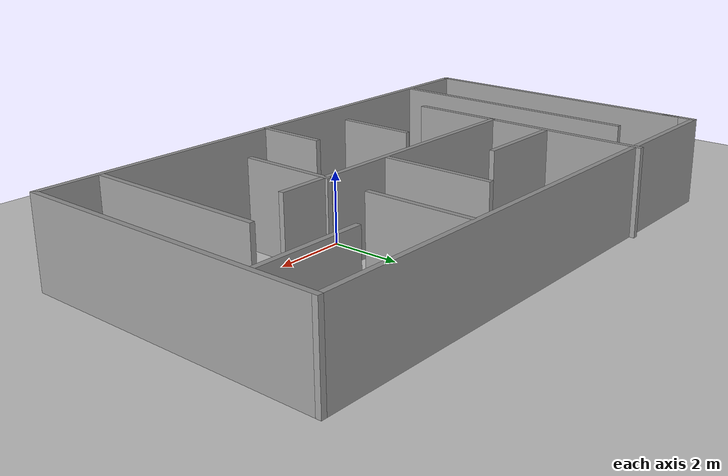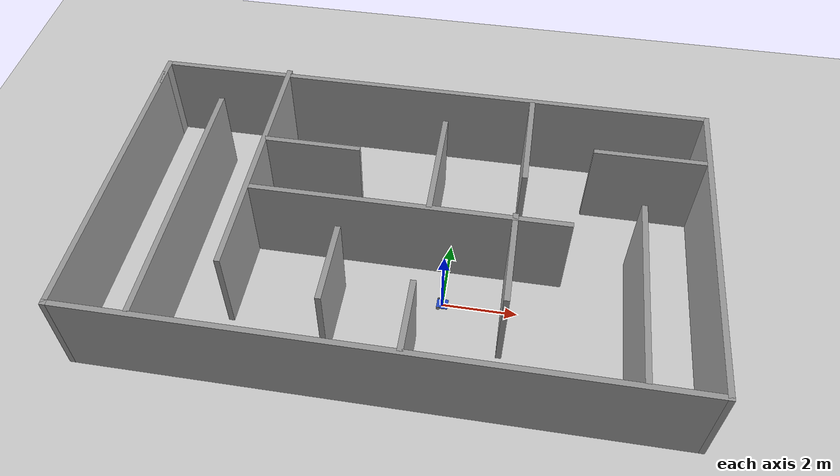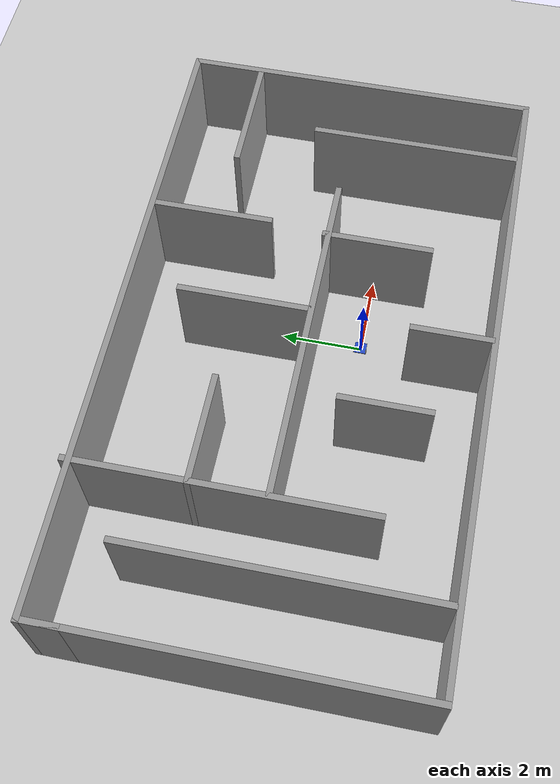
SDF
<sdf version="1.7">
 <world name="default">
  <light name="sun" type="directional">
   <pose>0 0 10 0 -0 0</pose>
   <diffuse>0.8 0.8 0.8 1</diffuse>
   <specular>0.2 0.2 0.2 1</specular>
   <attenuation>
    <range>1000</range>
    <constant>0.9</constant>
    <linear>0.01</linear>
    <quadratic>0.001</quadratic>
   </attenuation>
   <direction>-0.5 0.1 -0.9</direction>
   <spot><inner_angle>0</inner_angle><outer_angle>0</outer_angle><falloff>0</falloff></spot>
  </light>
  <model name="ground_plane">
   <static>1</static>
   <link name="link">
    <collision name="collision">
     <geometry><plane><normal>0 0 1</normal><size>100 100</size></plane></geometry>
     <surface>
      <contact><collide_bitmask>65535</collide_bitmask></contact>
      <friction><ode><mu>100</mu><mu2>50</mu2></ode></friction>
     </surface>
    </collision>
    <visual name="visual">
     <cast_shadows>0</cast_shadows>
     <geometry><plane><normal>0 0 1</normal><size>100 100</size></plane></geometry>
     <material>
      <script><uri>file://media/materials/scripts/gazebo.material</uri><name>Gazebo/Grey</name></script>
     </material>
    </visual>
   </link>
  </model>
  <gravity>0 0 -9.8</gravity>
  <magnetic_field>6e-06 2.3e-05 -4.2e-05</magnetic_field>
  <atmosphere type="adiabatic"/>
  <physics type="ode">
   <max_step_size>0.001</max_step_size>
   <real_time_factor>1</real_time_factor>
   <real_time_update_rate>1000</real_time_update_rate>
  </physics>
  <scene><ambient>0.4 0.4 0.4 1</ambient><background>0.7 0.7 0.7 1</background><shadows>1</shadows></scene>
  <spherical_coordinates>
   <surface_model>EARTH_WGS84</surface_model>
   <latitude_deg>0</latitude_deg>
   <longitude_deg>0</longitude_deg>
   <elevation>0</elevation>
   <heading_deg>0</heading_deg>
  </spherical_coordinates>
  <model name="mrobot">
   <link name="base_footprint">
    <inertial>
     <pose>0.045455 0 0.068182 0 -0 0</pose>
     <mass>0.22</mass>
     <inertia>
      <ixx>0.0201579</ixx>
      <ixy>0</ixy>
      <ixz>-1.81818e-05</ixz>
      <iyy>0.0207034</iyy>
      <iyz>0</iyz>
      <izz>0.0208455</izz>
     </inertia>
    </inertial>
    <collision name="base_footprint_fixed_joint_lump__base_link_collision">
     <pose>0 0 0.05 0 -0 0</pose>
     <geometry><box><size>0.3 0.3 0.02</size></box></geometry>
    </collision>
    <collision name="base_footprint_fixed_joint_lump__camera_link_collision_1">
     <pose>0.1 0 0.07 0 -0 0</pose>
     <geometry><box><size>0.01 0.04 0.04</size></box></geometry>
    </collision>
    <collision name="base_footprint_fixed_joint_lump__laser_link_collision_2">
     <pose>0 0 0.07 0 -0 0</pose>
     <geometry><cylinder><length>0.06</length><radius>0.05</radius></cylinder></geometry>
    </collision>
    <visual name="base_footprint_visual"><geometry><box><size>0.001 0.001 0.001</size></box></geometry></visual>
    <visual name="base_footprint_fixed_joint_lump__base_link_visual_1">
     <pose>0 0 0.05 0 -0 0</pose>
     <geometry><box><size>0.3 0.3 0.02</size></box></geometry>
     <material>
      <script><name>Gazebo/Blue</name><uri>file://media/materials/scripts/gazebo.material</uri></script>
     </material>
    </visual>
    <visual name="base_footprint_fixed_joint_lump__camera_link_visual_2">
     <pose>0.1 0 0.07 0 -0 0</pose>
     <geometry><box><size>0.01 0.04 0.04</size></box></geometry>
     <material>
      <script><name>Gazebo/Black</name><uri>file://media/materials/scripts/gazebo.material</uri></script>
     </material>
    </visual>
    <visual name="base_footprint_fixed_joint_lump__laser_link_visual_3">
     <pose>0 0 0.07 0 -0 0</pose>
     <geometry><cylinder><length>0.05</length><radius>0.05</radius></cylinder></geometry>
     <material>
      <script><name>Gazebo/Black</name><uri>file://media/materials/scripts/gazebo.material</uri></script>
     </material>
    </visual>
    <sensor name="camera_node" type="camera">
     <update_rate>30</update_rate>
     <camera name="head">
      <horizontal_fov>1.39626</horizontal_fov>
      <image><width>1280</width><height>720</height><format>R8G8B8</format></image>
      <clip><near>0.02</near><far>300</far></clip>
      <noise><type>gaussian</type><mean>0</mean><stddev>0.007</stddev></noise>
     </camera>
     <plugin name="gazebo_camera" filename="libgazebo_ros_camera.so">
      <alwaysOn>1</alwaysOn>
      <updateRate>0.0</updateRate>
      <cameraName>/camera</cameraName>
      <imageTopicName>image_raw</imageTopicName>
      <cameraInfoTopicName>camera_info</cameraInfoTopicName>
      <frameName>camera_link</frameName>
      <hackBaseline>0.07</hackBaseline>
      <distortionK1>0.0</distortionK1>
      <distortionK2>0.0</distortionK2>
      <distortionK3>0.0</distortionK3>
      <distortionT1>0.0</distortionT1>
      <distortionT2>0.0</distortionT2>
      <robotNamespace>/</robotNamespace>
     </plugin>
     <pose>0.1 0 0.07 0 -0 0</pose>
    </sensor>
    <sensor name="rplidar" type="ray">
     <visualize>0</visualize>
     <update_rate>5.5</update_rate>
     <ray>
      <scan>
       <horizontal>
        <samples>360</samples>
        <resolution>1</resolution>
        <min_angle>-3</min_angle>
        <max_angle>3</max_angle>
       </horizontal>
       <vertical><samples>1</samples><min_angle>0</min_angle><max_angle>0</max_angle></vertical>
      </scan>
      <range><min>0.1</min><max>6</max><resolution>0.01</resolution></range>
      <noise><type>gaussian</type><mean>0</mean><stddev>0.01</stddev></noise>
     </ray>
     <plugin name="gazebo_rplidar" filename="libgazebo_ros_laser.so">
      <topicName>/scan</topicName>
      <frameName>laser_link</frameName>
      <robotNamespace>/</robotNamespace>
     </plugin>
     <pose>0 0 0.07 0 -0 0</pose>
    </sensor>
   </link>
   <joint name="front_caster_joint" type="revolute">
    <pose relative_to="base_footprint">0.12 0 0.02 0 -0 0</pose>
    <parent>base_footprint</parent>
    <child>front_caster_link</child>
    <axis>
     <xyz>0 1 0</xyz>
     <limit><lower>-1e+16</lower><upper>1e+16</upper></limit>
     <dynamics><spring_reference>0</spring_reference><spring_stiffness>0</spring_stiffness></dynamics>
    </axis>
   </joint>
   <link name="front_caster_link">
    <pose relative_to="front_caster_joint">0 0 0 0 -0 0</pose>
    <inertial>
     <mass>0.001</mass>
     <inertia><ixx>1.6e-07</ixx><ixy>0</ixy><ixz>0</ixz><iyy>1.6e-07</iyy><iyz>0</iyz><izz>1.6e-07</izz></inertia>
    </inertial>
    <collision name="front_caster_link_collision">
     <geometry><sphere><radius>0.02</radius></sphere></geometry>
    </collision>
    <visual name="front_caster_link_visual">
     <geometry><sphere><radius>0.02</radius></sphere></geometry>
     <material>
      <script><name>Gazebo/Black</name><uri>file://media/materials/scripts/gazebo.material</uri></script>
     </material>
    </visual>
   </link>
   <joint name="left_wheel_joint" type="revolute">
    <pose relative_to="base_footprint">-0.1 0.15 0.05 0 -0 0</pose>
    <parent>base_footprint</parent>
    <child>left_wheel_link</child>
    <axis>
     <xyz>0 1 0</xyz>
     <limit><lower>-1e+16</lower><upper>1e+16</upper></limit>
     <dynamics><spring_reference>0</spring_reference><spring_stiffness>0</spring_stiffness></dynamics>
    </axis>
   </joint>
   <link name="left_wheel_link">
    <pose relative_to="left_wheel_joint">0 0 0 0 -0 0</pose>
    <inertial>
     <mass>0.02</mass>
     <inertia>
      <ixx>1.31667e-05</ixx>
      <ixy>0</ixy>
      <ixz>0</ixz>
      <iyy>1.31667e-05</iyy>
      <iyz>0</iyz>
      <izz>2.5e-05</izz>
     </inertia>
    </inertial>
    <collision name="left_wheel_link_collision">
     <pose>0 0 0 1.5708 -0 0</pose>
     <geometry><cylinder><length>0.02</length><radius>0.05</radius></cylinder></geometry>
    </collision>
    <visual name="left_wheel_link_visual">
     <pose>0 0 0 1.5708 -0 0</pose>
     <geometry><cylinder><length>0.02</length><radius>0.05</radius></cylinder></geometry>
     <material>
      <script><name>Gazebo/Gray</name><uri>file://media/materials/scripts/gazebo.material</uri></script>
     </material>
    </visual>
   </link>
   <joint name="right_wheel_joint" type="revolute">
    <pose relative_to="base_footprint">-0.1 -0.15 0.05 0 -0 0</pose>
    <parent>base_footprint</parent>
    <child>right_wheel_link</child>
    <axis>
     <xyz>0 1 0</xyz>
     <limit><lower>-1e+16</lower><upper>1e+16</upper></limit>
     <dynamics><spring_reference>0</spring_reference><spring_stiffness>0</spring_stiffness></dynamics>
    </axis>
   </joint>
   <link name="right_wheel_link">
    <pose relative_to="right_wheel_joint">0 0 0 0 -0 0</pose>
    <inertial>
     <mass>0.02</mass>
     <inertia>
      <ixx>1.31667e-05</ixx>
      <ixy>0</ixy>
      <ixz>0</ixz>
      <iyy>1.31667e-05</iyy>
      <iyz>0</iyz>
      <izz>2.5e-05</izz>
     </inertia>
    </inertial>
    <collision name="right_wheel_link_collision">
     <pose>0 0 0 1.5708 -0 0</pose>
     <geometry><cylinder><length>0.02</length><radius>0.05</radius></cylinder></geometry>
    </collision>
    <visual name="right_wheel_link_visual">
     <pose>0 0 0 1.5708 -0 0</pose>
     <geometry><cylinder><length>0.02</length><radius>0.05</radius></cylinder></geometry>
     <material>
      <script><name>Gazebo/Gray</name><uri>file://media/materials/scripts/gazebo.material</uri></script>
     </material>
    </visual>
   </link>
   <static>0</static>
   <plugin name="differential_drive_controller" filename="libgazebo_ros_diff_drive.so">
    <rosDebugLevel>Debug</rosDebugLevel>
    <publishWheelTF>1</publishWheelTF>
    <robotNamespace>/</robotNamespace>
    <publishTf>1</publishTf>
    <publishWheelJointState>1</publishWheelJointState>
    <alwaysOn>1</alwaysOn>
    <updateRate>100.0</updateRate>
    <legacyMode>1</legacyMode>
    <leftJoint>left_wheel_joint</leftJoint>
    <rightJoint>right_wheel_joint</rightJoint>
    <wheelSeparation>0.3</wheelSeparation>
    <wheelDiameter>0.1</wheelDiameter>
    <broadcastTF>1</broadcastTF>
    <wheelTorque>30</wheelTorque>
    <wheelAcceleration>1.8</wheelAcceleration>
    <commandTopic>cmd_vel</commandTopic>
    <odometryFrame>odom</odometryFrame>
    <odometryTopic>odom</odometryTopic>
    <robotBaseFrame>base_footprint</robotBaseFrame>
   </plugin>
   <pose>0.011006 -8.6e-05 -4.9e-05 -0 0.00051 0.000262</pose>
  </model>
  <model name="hw_09_room">
   <pose>-1.20909 1.31785 0 0 -0 0</pose>
   <link name="Wall_0">
    <collision name="Wall_0_Collision">
     <geometry><box><size>8.5 0.15 2.5</size></box></geometry>
     <pose>0 0 1.25 0 -0 0</pose>
    </collision>
    <visual name="Wall_0_Visual">
     <pose>0 0 1.25 0 -0 0</pose>
     <geometry><box><size>8.5 0.15 2.5</size></box></geometry>
     <material>
      <script><uri>file://media/materials/scripts/gazebo.material</uri><name>Gazebo/Grey</name></script>
      <ambient>1 1 1 1</ambient>
     </material>
     <meta><layer>0</layer></meta>
    </visual>
    <pose>-7.8 -0.319202 0 0 -0 -1.5708</pose>
   </link>
   <link name="Wall_1">
    <collision name="Wall_1_Collision">
     <geometry><box><size>15.75 0.15 2.5</size></box></geometry>
     <pose>0 0 1.25 0 -0 0</pose>
    </collision>
    <visual name="Wall_1_Visual">
     <pose>0 0 1.25 0 -0 0</pose>
     <geometry><box><size>15.75 0.15 2.5</size></box></geometry>
     <material>
      <script><uri>file://media/materials/scripts/gazebo.material</uri><name>Gazebo/Grey</name></script>
      <ambient>1 1 1 1</ambient>
     </material>
     <meta><layer>0</layer></meta>
    </visual>
    <pose>0 -4.4942 0 0 -0 0</pose>
   </link>
   <link name="Wall_10">
    <collision name="Wall_10_Collision">
     <geometry><box><size>8.5 0.15 2.5</size></box></geometry>
     <pose>0 0 1.25 0 -0 0</pose>
    </collision>
    <visual name="Wall_10_Visual">
     <pose>0 0 1.25 0 -0 0</pose>
     <geometry><box><size>8.5 0.15 2.5</size></box></geometry>
     <material>
      <script><uri>file://media/materials/scripts/gazebo.material</uri><name>Gazebo/Grey</name></script>
      <ambient>1 1 1 1</ambient>
     </material>
     <meta><layer>0</layer></meta>
    </visual>
    <pose>0.045828 -0.134232 0 0 -0 0</pose>
   </link>
   <link name="Wall_12">
    <collision name="Wall_12_Collision">
     <geometry><box><size>2.25 0.15 2.5</size></box></geometry>
     <pose>0 0 1.25 0 -0 0</pose>
    </collision>
    <visual name="Wall_12_Visual">
     <pose>0 0 1.25 0 -0 0</pose>
     <geometry><box><size>2.25 0.15 2.5</size></box></geometry>
     <material>
      <script><uri>file://media/materials/scripts/gazebo.material</uri><name>Gazebo/Grey</name></script>
      <ambient>1 1 1 1</ambient>
     </material>
     <meta><layer>0</layer></meta>
    </visual>
    <pose>-1.52235 -2.24966 0 0 -0 1.5708</pose>
   </link>
   <link name="Wall_14">
    <collision name="Wall_14_Collision">
     <geometry><box><size>2 0.15 2.5</size></box></geometry>
     <pose>0 0 1.25 0 -0 0</pose>
    </collision>
    <visual name="Wall_14_Visual">
     <pose>0 0 1.25 0 -0 0</pose>
     <geometry><box><size>2 0.15 2.5</size></box></geometry>
     <material>
      <script><uri>file://media/materials/scripts/gazebo.material</uri><name>Gazebo/Grey</name></script>
      <ambient>1 1 1 1</ambient>
     </material>
     <meta><layer>0</layer></meta>
    </visual>
    <pose>0.605663 -3.47985 0 0 -0 -1.5708</pose>
   </link>
   <link name="Wall_16">
    <collision name="Wall_16_Collision">
     <geometry><box><size>2.75 0.15 2.5</size></box></geometry>
     <pose>0 0 1.25 0 -0 0</pose>
    </collision>
    <visual name="Wall_16_Visual">
     <pose>0 0 1.25 0 -0 0</pose>
     <geometry><box><size>2.75 0.15 2.5</size></box></geometry>
     <material>
      <script><uri>file://media/materials/scripts/gazebo.material</uri><name>Gazebo/Grey</name></script>
      <ambient>1 1 1 1</ambient>
     </material>
     <meta><layer>0</layer></meta>
    </visual>
    <pose>2.84008 -1.35443 0 0 -0 -1.5708</pose>
   </link>
   <link name="Wall_18">
    <collision name="Wall_18_Collision">
     <geometry><box><size>2.75 0.15 2.5</size></box></geometry>
     <pose>0 0 1.25 0 -0 0</pose>
    </collision>
    <visual name="Wall_18_Visual">
     <pose>0 0 1.25 0 -0 0</pose>
     <geometry><box><size>2.75 0.15 2.5</size></box></geometry>
     <material>
      <script><uri>file://media/materials/scripts/gazebo.material</uri><name>Gazebo/Grey</name></script>
      <ambient>1 1 1 1</ambient>
     </material>
     <meta><layer>0</layer></meta>
    </visual>
    <pose>-2.88237 1.67458 0 0 -0 0</pose>
   </link>
   <link name="Wall_2">
    <collision name="Wall_2_Collision">
     <geometry><box><size>9 0.15 2.5</size></box></geometry>
     <pose>0 0 1.25 0 -0 0</pose>
    </collision>
    <visual name="Wall_2_Visual">
     <pose>0 0 1.25 0 -0 0</pose>
     <geometry><box><size>9 0.15 2.5</size></box></geometry>
     <material>
      <script><uri>file://media/materials/scripts/gazebo.material</uri><name>Gazebo/Grey</name></script>
      <ambient>1 1 1 1</ambient>
     </material>
     <meta><layer>0</layer></meta>
    </visual>
    <pose>7.8 -0.069202 0 0 -0 1.5708</pose>
   </link>
   <link name="Wall_20">
    <collision name="Wall_20_Collision">
     <geometry><box><size>3.25 0.15 2.5</size></box></geometry>
     <pose>0 0 1.25 0 -0 0</pose>
    </collision>
    <visual name="Wall_20_Visual">
     <pose>0 0 1.25 0 -0 0</pose>
     <geometry><box><size>3.25 0.15 2.5</size></box></geometry>
     <material>
      <script><uri>file://media/materials/scripts/gazebo.material</uri><name>Gazebo/Grey</name></script>
      <ambient>1 1 1 1</ambient>
     </material>
     <meta><layer>0</layer></meta>
    </visual>
    <pose>0.632263 1.50779 0 0 -0 -1.5708</pose>
   </link>
   <link name="Wall_22">
    <collision name="Wall_22_Collision">
     <geometry><box><size>3 0.15 2.5</size></box></geometry>
     <pose>0 0 1.25 0 -0 0</pose>
    </collision>
    <visual name="Wall_22_Visual">
     <pose>0 0 1.25 0 -0 0</pose>
     <geometry><box><size>3 0.15 2.5</size></box></geometry>
     <material>
      <script><uri>file://media/materials/scripts/gazebo.material</uri><name>Gazebo/Grey</name></script>
      <ambient>1 1 1 1</ambient>
     </material>
     <meta><layer>0</layer></meta>
    </visual>
    <pose>2.97308 2.8032 0 0 -0 -1.5708</pose>
   </link>
   <link name="Wall_24">
    <collision name="Wall_24_Collision">
     <geometry><box><size>3 0.15 2.5</size></box></geometry>
     <pose>0 0 1.25 0 -0 0</pose>
    </collision>
    <visual name="Wall_24_Visual">
     <pose>0 0 1.25 0 -0 0</pose>
     <geometry><box><size>3 0.15 2.5</size></box></geometry>
     <material>
      <script><uri>file://media/materials/scripts/gazebo.material</uri><name>Gazebo/Grey</name></script>
      <ambient>1 1 1 1</ambient>
     </material>
     <meta><layer>0</layer></meta>
    </visual>
    <pose>6.23349 2.60559 0 0 -0 0</pose>
   </link>
   <link name="Wall_26">
    <collision name="Wall_26_Collision">
     <geometry><box><size>5.25 0.15 2.5</size></box></geometry>
     <pose>0 0 1.25 0 -0 0</pose>
    </collision>
    <visual name="Wall_26_Visual">
     <pose>0 0 1.25 0 -0 0</pose>
     <geometry><box><size>5.25 0.15 2.5</size></box></geometry>
     <material>
      <script><uri>file://media/materials/scripts/gazebo.material</uri><name>Gazebo/Grey</name></script>
      <ambient>1 1 1 1</ambient>
     </material>
     <meta><layer>0</layer></meta>
    </visual>
    <pose>6.0587 -1.80643 0 0 -0 -1.5708</pose>
   </link>
   <link name="Wall_3">
    <collision name="Wall_3_Collision">
     <geometry><box><size>15.75 0.15 2.5</size></box></geometry>
     <pose>0 0 1.25 0 -0 0</pose>
    </collision>
    <visual name="Wall_3_Visual">
     <pose>0 0 1.25 0 -0 0</pose>
     <geometry><box><size>15.75 0.15 2.5</size></box></geometry>
     <material>
      <script><uri>file://media/materials/scripts/gazebo.material</uri><name>Gazebo/Grey</name></script>
      <ambient>1 1 1 1</ambient>
     </material>
     <meta><layer>0</layer></meta>
    </visual>
    <pose>0 4.3558 0 0 -0 3.14159</pose>
   </link>
   <link name="Wall_4">
    <collision name="Wall_4_Collision">
     <geometry><box><size>1 0.15 2.5</size></box></geometry>
     <pose>0 0 1.25 0 -0 0</pose>
    </collision>
    <visual name="Wall_4_Visual">
     <pose>0 0 1.25 0 -0 0</pose>
     <geometry><box><size>1 0.15 2.5</size></box></geometry>
     <material>
      <script><uri>file://media/materials/scripts/gazebo.material</uri><name>Gazebo/Grey</name></script>
      <ambient>1 1 1 1</ambient>
     </material>
     <meta><layer>0</layer></meta>
    </visual>
    <pose>-7.8 3.9308 0 0 -0 -1.5708</pose>
   </link>
   <link name="Wall_6">
    <collision name="Wall_6_Collision">
     <geometry><box><size>7.5 0.15 2.5</size></box></geometry>
     <pose>0 0 1.25 0 -0 0</pose>
    </collision>
    <visual name="Wall_6_Visual">
     <pose>0 0 1.25 0 -0 0</pose>
     <geometry><box><size>7.5 0.15 2.5</size></box></geometry>
     <material>
      <script><uri>file://media/materials/scripts/gazebo.material</uri><name>Gazebo/Grey</name></script>
      <ambient>1 1 1 1</ambient>
     </material>
     <meta><layer>0</layer></meta>
    </visual>
    <pose>-5.80499 -0.688664 0 0 -0 1.5708</pose>
   </link>
   <link name="Wall_8">
    <collision name="Wall_8_Collision">
     <geometry><box><size>7.25 0.15 2.5</size></box></geometry>
     <pose>0 0 1.25 0 -0 0</pose>
    </collision>
    <visual name="Wall_8_Visual">
     <pose>0 0 1.25 0 -0 0</pose>
     <geometry><box><size>7.25 0.15 2.5</size></box></geometry>
     <material>
      <script><uri>file://media/materials/scripts/gazebo.material</uri><name>Gazebo/Grey</name></script>
      <ambient>1 1 1 1</ambient>
     </material>
     <meta><layer>0</layer></meta>
    </visual>
    <pose>-4.18237 0.944203 0 0 -0 -1.5708</pose>
   </link>
   <static>1</static>
  </model>
 </world>
</sdf>
